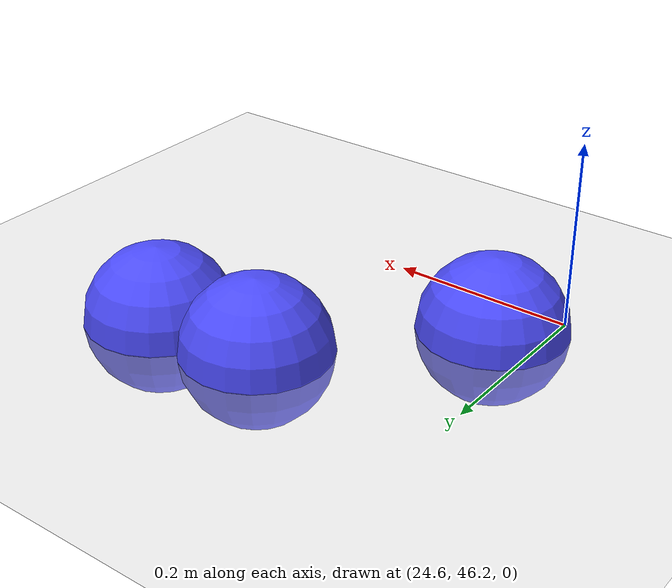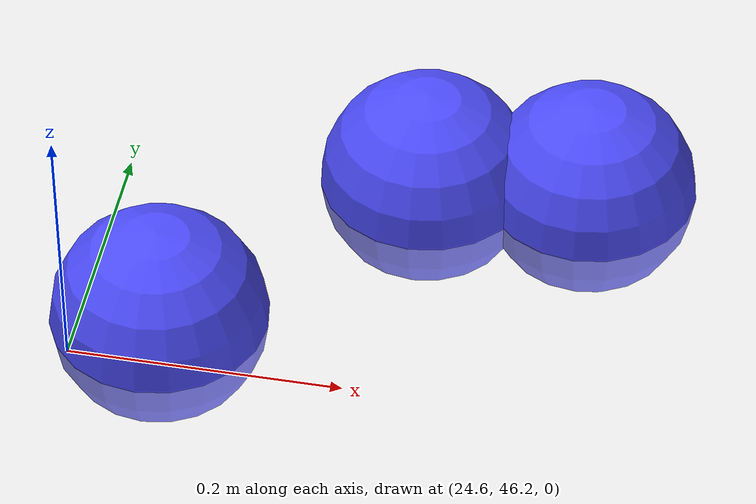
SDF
<sdf version="1.7">
 <world name="default">
  <model name="ground_plane">
   <static>1</static>
   <link name="link">
    <collision name="collision">
     <geometry><plane><normal>0 0 1</normal><size>100 100</size></plane></geometry>
     <surface>
      <contact><collide_bitmask>65535</collide_bitmask></contact>
      <friction><ode><mu>100</mu><mu2>50</mu2></ode></friction>
     </surface>
    </collision>
    <visual name="visual">
     <cast_shadows>0</cast_shadows>
     <geometry><plane><normal>0 0 1</normal><size>100 100</size></plane></geometry>
     <material>
      <script><uri>file://media/materials/scripts/gazebo.material</uri><name>Gazebo/Grey</name></script>
     </material>
    </visual>
   </link>
  </model>
  <model name="seed_blue_12">
   <link name="link">
    <inertial>
     <mass>1</mass>
     <inertia><ixx>0.1</ixx><ixy>0</ixy><ixz>0</ixz><iyy>0.1</iyy><iyz>0</iyz><izz>0.1</izz></inertia>
    </inertial>
    <visual name="visual">
     <geometry><sphere><radius>0.08</radius></sphere></geometry>
     <material>
      <script><name>Gazebo/Grey</name><uri>file://media/materials/scripts/gazebo.material</uri></script>
      <shader type="pixel"><normal_map>__default__</normal_map></shader>
      <ambient>0.3 0.3 1 1</ambient>
      <diffuse>0.7 0.7 0.7 1</diffuse>
      <specular>0.01 0.01 0.01 1</specular>
      <emissive>0 0 0 1</emissive>
     </material>
    </visual>
    <collision name="collision">
     <geometry><sphere><radius>0.0005</radius></sphere></geometry>
     <surface>
      <friction>
       <ode><mu>1</mu><mu2>1</mu2><fdir1>0 0 0</fdir1><slip1>0</slip1><slip2>0</slip2></ode>
       <torsional>
        <coefficient>1</coefficient>
        <patch_radius>0</patch_radius>
        <surface_radius>0</surface_radius>
        <use_patch_radius>1</use_patch_radius>
        <ode><slip>0</slip></ode>
       </torsional>
      </friction>
      <bounce><restitution_coefficient>0</restitution_coefficient><threshold>1e+06</threshold></bounce>
      <contact>
       <collide_without_contact>0</collide_without_contact>
       <collide_without_contact_bitmask>1</collide_without_contact_bitmask>
       <collide_bitmask>1</collide_bitmask>
       <ode>
        <soft_cfm>0</soft_cfm>
        <soft_erp>0.2</soft_erp>
        <kp>1e+13</kp>
        <kd>1</kd>
        <max_vel>0.01</max_vel>
        <min_depth>0</min_depth>
       </ode>
       <bullet>
        <split_impulse>1</split_impulse>
        <split_impulse_penetration_threshold>-0.01</split_impulse_penetration_threshold>
        <soft_cfm>0</soft_cfm>
        <soft_erp>0.2</soft_erp>
        <kp>1e+13</kp>
        <kd>1</kd>
       </bullet>
      </contact>
     </surface>
    </collision>
   </link>
   <static>0</static>
   <pose>24.9416 46.4382 0.0005 0 -0 0</pose>
  </model>
  <model name="seed_blue_15">
   <link name="link">
    <inertial>
     <mass>1</mass>
     <inertia><ixx>0.1</ixx><ixy>0</ixy><ixz>0</ixz><iyy>0.1</iyy><iyz>0</iyz><izz>0.1</izz></inertia>
    </inertial>
    <visual name="visual">
     <geometry><sphere><radius>0.08</radius></sphere></geometry>
     <material>
      <script><name>Gazebo/Grey</name><uri>file://media/materials/scripts/gazebo.material</uri></script>
      <shader type="pixel"><normal_map>__default__</normal_map></shader>
      <ambient>0.3 0.3 1 1</ambient>
      <diffuse>0.7 0.7 0.7 1</diffuse>
      <specular>0.01 0.01 0.01 1</specular>
      <emissive>0 0 0 1</emissive>
     </material>
    </visual>
    <collision name="collision">
     <geometry><sphere><radius>0.0005</radius></sphere></geometry>
     <surface>
      <friction>
       <ode><mu>1</mu><mu2>1</mu2><fdir1>0 0 0</fdir1><slip1>0</slip1><slip2>0</slip2></ode>
       <torsional>
        <coefficient>1</coefficient>
        <patch_radius>0</patch_radius>
        <surface_radius>0</surface_radius>
        <use_patch_radius>1</use_patch_radius>
        <ode><slip>0</slip></ode>
       </torsional>
      </friction>
      <bounce><restitution_coefficient>0</restitution_coefficient><threshold>1e+06</threshold></bounce>
      <contact>
       <collide_without_contact>0</collide_without_contact>
       <collide_without_contact_bitmask>1</collide_without_contact_bitmask>
       <collide_bitmask>1</collide_bitmask>
       <ode>
        <soft_cfm>0</soft_cfm>
        <soft_erp>0.2</soft_erp>
        <kp>1e+13</kp>
        <kd>1</kd>
        <max_vel>0.01</max_vel>
        <min_depth>0</min_depth>
       </ode>
       <bullet>
        <split_impulse>1</split_impulse>
        <split_impulse_penetration_threshold>-0.01</split_impulse_penetration_threshold>
        <soft_cfm>0</soft_cfm>
        <soft_erp>0.2</soft_erp>
        <kp>1e+13</kp>
        <kd>1</kd>
       </bullet>
      </contact>
     </surface>
    </collision>
   </link>
   <static>0</static>
   <pose>24.6562 46.2496 0.0005 0 -0 0</pose>
  </model>
  <model name="seed_blue_16">
   <link name="link">
    <inertial>
     <mass>1</mass>
     <inertia><ixx>0.1</ixx><ixy>0</ixy><ixz>0</ixz><iyy>0.1</iyy><iyz>0</iyz><izz>0.1</izz></inertia>
    </inertial>
    <visual name="visual">
     <geometry><sphere><radius>0.08</radius></sphere></geometry>
     <material>
      <script><name>Gazebo/Grey</name><uri>file://media/materials/scripts/gazebo.material</uri></script>
      <shader type="pixel"><normal_map>__default__</normal_map></shader>
      <ambient>0.3 0.3 1 1</ambient>
      <diffuse>0.7 0.7 0.7 1</diffuse>
      <specular>0.01 0.01 0.01 1</specular>
      <emissive>0 0 0 1</emissive>
     </material>
    </visual>
    <collision name="collision">
     <geometry><sphere><radius>0.0005</radius></sphere></geometry>
     <surface>
      <friction>
       <ode><mu>1</mu><mu2>1</mu2><fdir1>0 0 0</fdir1><slip1>0</slip1><slip2>0</slip2></ode>
       <torsional>
        <coefficient>1</coefficient>
        <patch_radius>0</patch_radius>
        <surface_radius>0</surface_radius>
        <use_patch_radius>1</use_patch_radius>
        <ode><slip>0</slip></ode>
       </torsional>
      </friction>
      <bounce><restitution_coefficient>0</restitution_coefficient><threshold>1e+06</threshold></bounce>
      <contact>
       <collide_without_contact>0</collide_without_contact>
       <collide_without_contact_bitmask>1</collide_without_contact_bitmask>
       <collide_bitmask>1</collide_bitmask>
       <ode>
        <soft_cfm>0</soft_cfm>
        <soft_erp>0.2</soft_erp>
        <kp>1e+13</kp>
        <kd>1</kd>
        <max_vel>0.01</max_vel>
        <min_depth>0</min_depth>
       </ode>
       <bullet>
        <split_impulse>1</split_impulse>
        <split_impulse_penetration_threshold>-0.01</split_impulse_penetration_threshold>
        <soft_cfm>0</soft_cfm>
        <soft_erp>0.2</soft_erp>
        <kp>1e+13</kp>
        <kd>1</kd>
       </bullet>
      </contact>
     </surface>
    </collision>
   </link>
   <static>0</static>
   <pose>24.8206 46.4278 0.0005 0 -0 0</pose>
  </model>
 </world>
</sdf>
